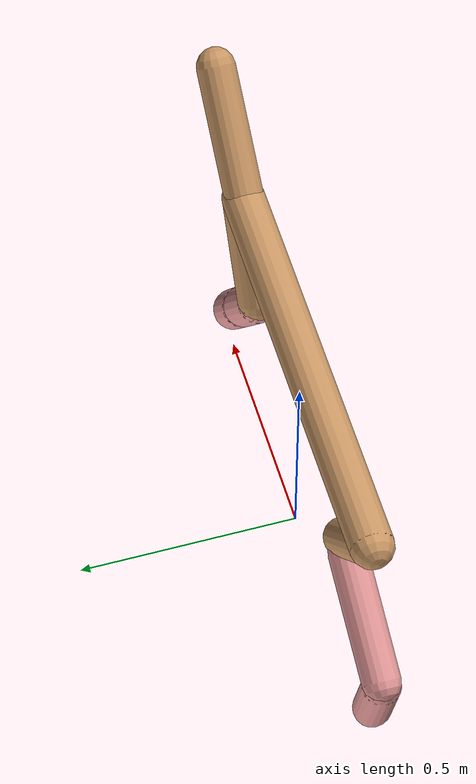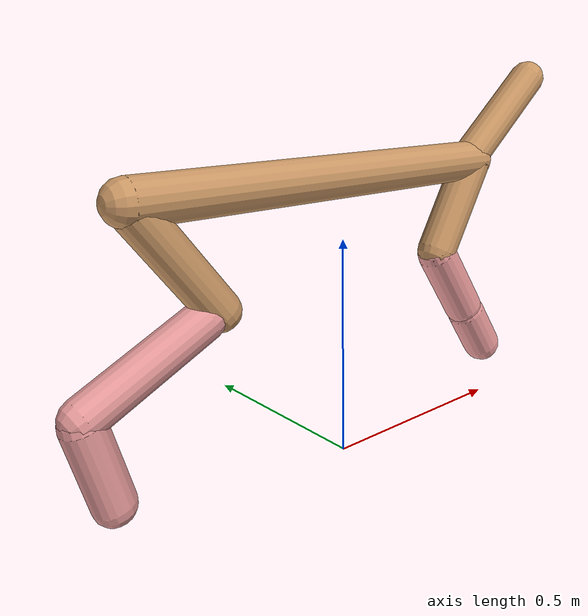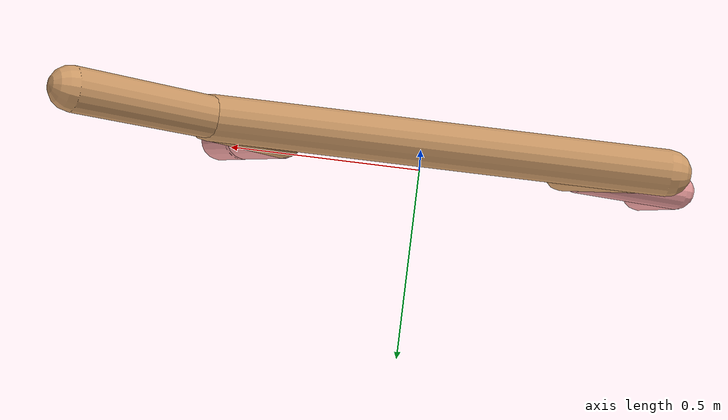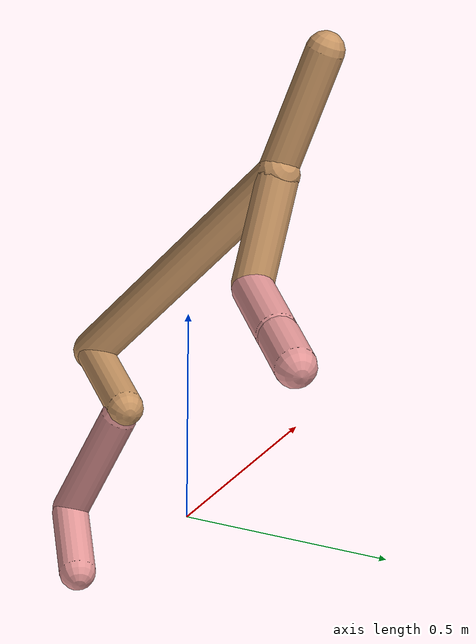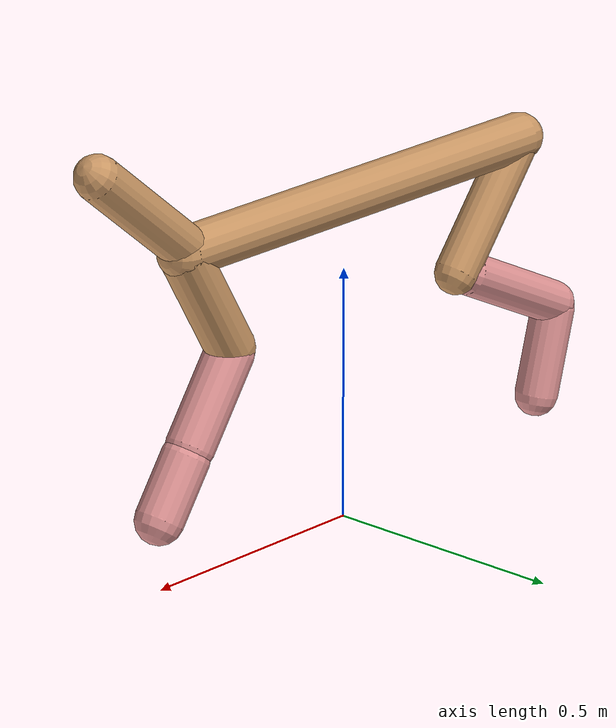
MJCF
<mujoco model="cheetah">
  <compiler angle="radian" coordinate="local" inertiafromgeom="true" settotalmass="14" />
  <default>
    <joint armature=".1" damping=".01" limited="true" solimplimit="0 .8 .03" solreflimit=".02 1" stiffness="8" />
    <geom conaffinity="0" condim="3" contype="1" friction="0.8 .1 .1" rgba="0.8 0.6 .4 1" solimp="0.0 0.8 0.01" solref="0.02 1" />
    <motor ctrllimited="true" ctrlrange="-1 1" />
  </default>
  <size nstack="300000" nuser_geom="1" />
  <option gravity="0 0 -9.81" timestep="0.01" />
  <worldbody>
    <body name="torso" pos="0.0 0.0 0.6402131895965377">
      <joint armature="0" axis="1 0 0" damping="0" limited="false" name="ignorex" pos="0 0 0" stiffness="0" type="slide" />
      <joint armature="0" axis="0 0 1" damping="0" limited="false" name="ignorez" pos="0 0 0" stiffness="0" type="slide" />
      <joint armature="0" axis="0 1 0" damping="0" limited="false" name="ignorey" pos="0 0 0" stiffness="0" type="hinge" />
      <geom fromto="-0.5 0.0 0.0 0.4326265060766631 0.0 0.0" name="torso" size="0.04787230990903824" type="capsule" />
      <geom axisangle="0 1 0 .87" name="head" pos="0.5326265060766631 0.0 0.1" size="0.04362787614364561 0.15" type="capsule" />

      <body name="bthigh" pos="-.5 0 0">
        <joint axis="0 1 0" damping="6" name="bthigh" pos="0 0 0" range="-.52 1.05" stiffness="240" type="hinge" />
        <geom axisangle="0 1 0 -3.8" name="bthigh" pos="0.09552064750789718 0.0 -0.12417684176026633" size="0.04284519355821911 0.13765331567076097" type="capsule" />
        <body name="bshin" pos="0.15104129501579436 0.0 -0.23835368352053266">
          <joint axis="0 1 0" damping="4.5" name="bshin" pos="0 0 0" range="-.785 .785" stiffness="180" type="hinge" />
          <geom axisangle="0 1 0 -2.03" name="bshin" pos="-0.13320233700576103 0.0 -0.06660116850288052" rgba="0.9 0.6 0.6 1" size="0.04284519355821911 0.14239998172837343" type="capsule" />
          <body name="bfoot" pos="-0.26640467401152207 0.0 -0.13320233700576103">
            <joint axis="0 1 0" damping="3" name="bfoot" pos="0 0 0" range="-.4 .785" stiffness="120" type="hinge" />
            <geom axisangle="0 1 0 -.27" name="bfoot" pos="0.028592772816436705 0.0 -0.09244996543981202" rgba="0.9 0.6 0.6 1" size="0.04284519355821911 0.08923732188311402" type="capsule" />
            <inertial mass="10" />
          </body>
        </body>
      </body>
      <body name="fthigh" pos="0.4326265060766631 0.0 0.0">
        <joint axis="0 1 0" damping="4.5" name="fthigh" pos="0 0 0" range="-1.5 0.8" stiffness="180" type="hinge" />
        <geom axisangle="0 1 0 .52" name="fthigh" pos="-0.06394867852010412 0.0 -0.10962630603446419" size="0.04707457537731746 0.1209903364683417" type="capsule" />
        <body name="fshin" pos="-0.12789735704020824 0.0 -0.21925261206892838">
          <joint axis="0 1 0" damping="3" name="fshin" pos="0 0 0" range="-1.2 1.1" stiffness="120" type="hinge" />
          <geom axisangle="0 1 0 -.6" name="fshin" pos="0.059395911860305926 0.0 -0.08224049334503897" rgba="0.9 0.6 0.6 1" size="0.04707457537731746 0.09642838846349036" type="capsule" />
          <body name="ffoot" pos="0.11879182372061185 0.0 -0.16448098669007793">
            <joint axis="0 1 0" damping="1.5" name="ffoot" pos="0 0 0" range="-3.1 -0.3" stiffness="60" type="hinge" />
            <geom axisangle="0 1 0 -.6" name="ffoot" pos="0.041581938566386784 0.0 -0.06468301554771277" rgba="0.9 0.6 0.6 1" size="0.04707457537731746 0.06367912445702195" type="capsule" />
            <inertial mass="10" />
          </body>
        </body>
      </body>
    </body>
  </worldbody>
  <actuator>
    <motor gear="120" joint="bthigh" name="bthigh" />
    <motor gear="90" joint="bshin" name="bshin" />
    <motor gear="60" joint="bfoot" name="bfoot" />
    <motor gear="120" joint="fthigh" name="fthigh" />
    <motor gear="60" joint="fshin" name="fshin" />
    <motor gear="30" joint="ffoot" name="ffoot" />
  </actuator>
</mujoco>
